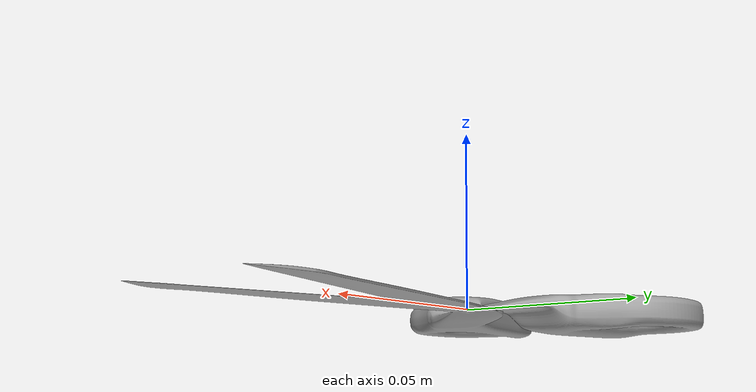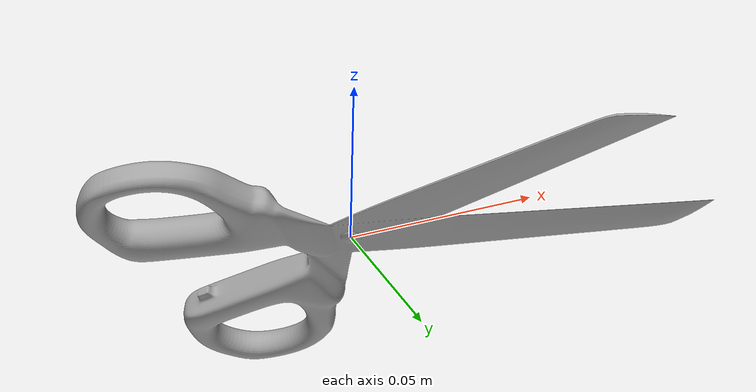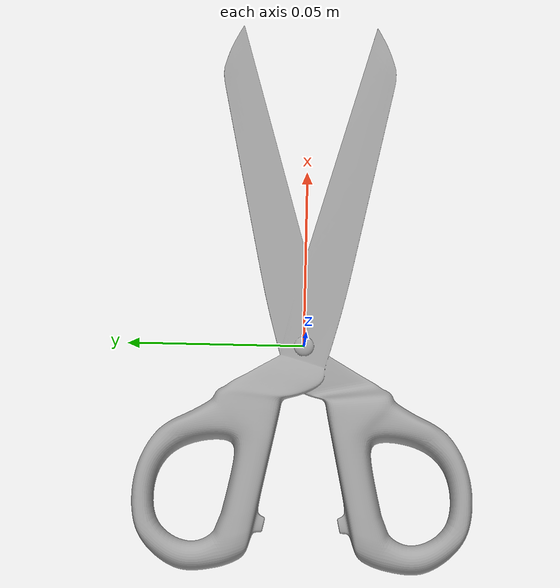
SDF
<?xml version="1.0" ?>
<sdf version="1.5">
  <model name="Watermelon">
    <link name="link">
      <inertial>
        <pose>0 0 0 0 0 0</pose>
        <mass>0.1</mass>
        <inertia>
          <ixx>0.000166666666667</ixx>
          <ixy>0</ixy>
          <ixz>0</ixz>
          <iyy>0.000166666666667</iyy>
          <iyz>0</iyz>
          <izz>0.000166666666667</izz>
        </inertia>
      </inertial>

      <collision name="person">
        <pose>0 0 0 0 0 0</pose>
        <geometry>
          <mesh>
            <scale>0.1 0.1 0.1</scale>
            <uri>model://scissors/meshes/scissors.dae</uri>
          </mesh>
        </geometry>
      </collision>

      <visual name="visual">
        <pose>0 0 0 0 0 0</pose>
        <geometry>
          <mesh>
            <scale>0.1 0.1 0.1</scale>
            <uri>model://scissors/meshes/scissors.dae</uri>
          </mesh>
        </geometry>
      </visual>
    </link>
  </model>
</sdf>
